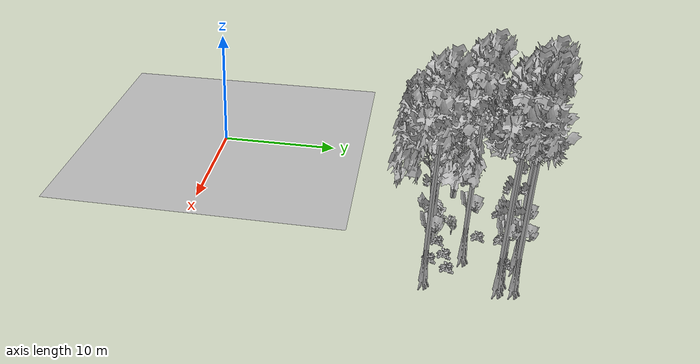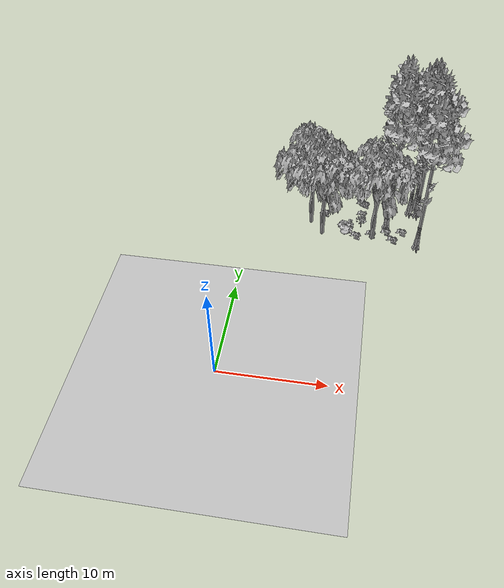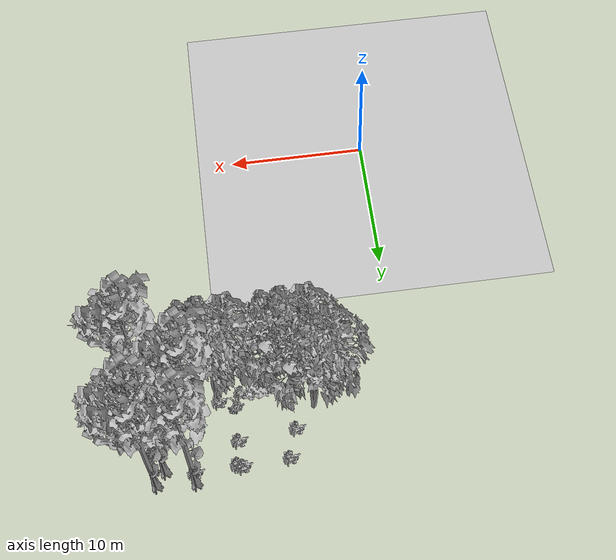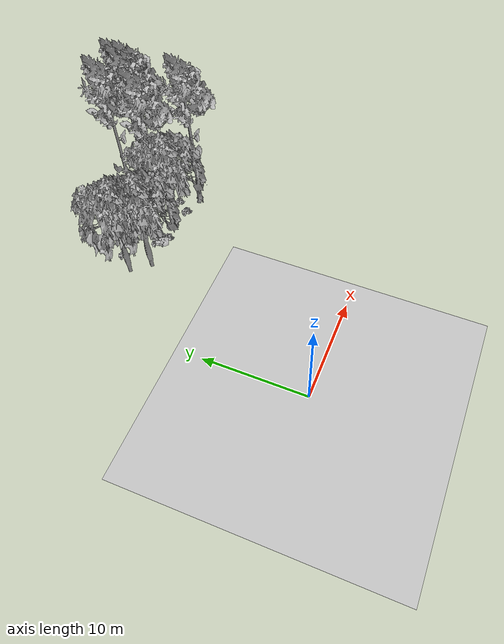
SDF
<sdf version="1.7">
 <world name="default">
  <model name="ground_plane">
   <static>1</static>
   <link name="link">
    <collision name="collision">
     <pose>-50 0 0 0 -0 0</pose>
     <geometry><plane><normal>0 0 1</normal><size>80 80</size></plane></geometry>
     <surface><contact><ode><min_depth>0.01</min_depth><max_vel>0</max_vel></ode></contact></surface>
    </collision>
    <visual name="grass">
     <cast_shadows>0</cast_shadows>
     <geometry>
      <mesh>
       <scale>0.46714285714285714 0.46714285714285714 0.1</scale>
       <uri>file://grass_plane/meshes/grass_plane.dae</uri>
      </mesh>
     </geometry>
    </visual>
   </link>
  </model>
  <model name="Tree 19">
   <static>1</static>
   <pose>7.492964837227454 18.982073438112792 0 1.57079 -0 0</pose>
   <link name="link">
    <collision name="collision">
     <geometry><mesh><scale>3.5 5 3.5</scale><uri>model://tree_2/meshes/tree_2.obj</uri></mesh></geometry>
    </collision>
    <visual name="visual">
     <geometry><mesh><scale>3.5 5 3.5</scale><uri>model://tree_2/meshes/tree_2.obj</uri></mesh></geometry>
    </visual>
   </link>
  </model>
  <model name="Tree 23">
   <static>1</static>
   <pose>17.515586112609597 23.757073896121092 0 1.57079 -0 0</pose>
   <link name="link">
    <collision name="collision">
     <geometry><mesh><scale>3.5 5 3.5</scale><uri>model://tree_9/meshes/tree_9.obj</uri></mesh></geometry>
    </collision>
    <visual name="visual">
     <geometry><mesh><scale>3.5 5 3.5</scale><uri>model://tree_9/meshes/tree_9.obj</uri></mesh></geometry>
    </visual>
   </link>
  </model>
  <model name="Tree 115">
   <static>1</static>
   <pose>17.374951375174597 24.863605729819085 0 1.57079 -0 0</pose>
   <link name="link">
    <collision name="collision">
     <geometry><mesh><scale>3.5 5 3.5</scale><uri>model://tree_9/meshes/tree_9.obj</uri></mesh></geometry>
    </collision>
    <visual name="visual">
     <geometry><mesh><scale>3.5 5 3.5</scale><uri>model://tree_9/meshes/tree_9.obj</uri></mesh></geometry>
    </visual>
   </link>
  </model>
  <model name="Tree 143">
   <static>1</static>
   <pose>14.732624056927826 25.053784820803486 0 1.57079 -0 0</pose>
   <link name="link">
    <collision name="collision">
     <geometry><mesh><scale>3.5 5 3.5</scale><uri>model://tree_9/meshes/tree_9.obj</uri></mesh></geometry>
    </collision>
    <visual name="visual">
     <geometry><mesh><scale>3.5 5 3.5</scale><uri>model://tree_9/meshes/tree_9.obj</uri></mesh></geometry>
    </visual>
   </link>
  </model>
  <model name="Tree 240">
   <static>1</static>
   <pose>12.75969912128506 18.999003732467934 0 1.57079 -0 0</pose>
   <link name="link">
    <collision name="collision">
     <geometry><mesh><scale>3.5 5 3.5</scale><uri>model://tree_2/meshes/tree_2.obj</uri></mesh></geometry>
    </collision>
    <visual name="visual">
     <geometry><mesh><scale>3.5 5 3.5</scale><uri>model://tree_2/meshes/tree_2.obj</uri></mesh></geometry>
    </visual>
   </link>
  </model>
  <model name="Tree 283">
   <static>1</static>
   <pose>6.16494381658574 20.604498051196884 0 1.57079 -0 0</pose>
   <link name="link">
    <collision name="collision">
     <geometry><mesh><scale>3.5 5 3.5</scale><uri>model://tree_2/meshes/tree_2.obj</uri></mesh></geometry>
    </collision>
    <visual name="visual">
     <geometry><mesh><scale>3.5 5 3.5</scale><uri>model://tree_2/meshes/tree_2.obj</uri></mesh></geometry>
    </visual>
   </link>
  </model>
  <model name="Tree 333">
   <static>1</static>
   <pose>16.737334120922554 23.9827214229226 0 1.57079 -0 0</pose>
   <link name="link">
    <collision name="collision">
     <geometry><mesh><scale>3.5 5 3.5</scale><uri>model://tree_9/meshes/tree_9.obj</uri></mesh></geometry>
    </collision>
    <visual name="visual">
     <geometry><mesh><scale>3.5 5 3.5</scale><uri>model://tree_9/meshes/tree_9.obj</uri></mesh></geometry>
    </visual>
   </link>
  </model>
  <model name="Tree 431">
   <static>1</static>
   <pose>14.320911684472385 21.362742919863173 0 1.57079 -0 0</pose>
   <link name="link">
    <collision name="collision">
     <geometry><mesh><scale>3.5 5 3.5</scale><uri>model://tree_9/meshes/tree_9.obj</uri></mesh></geometry>
    </collision>
    <visual name="visual">
     <geometry><mesh><scale>3.5 5 3.5</scale><uri>model://tree_9/meshes/tree_9.obj</uri></mesh></geometry>
    </visual>
   </link>
  </model>
  <model name="Tree 575">
   <static>1</static>
   <pose>17.51455254611851 18.66112296201237 0 1.57079 -0 0</pose>
   <link name="link">
    <collision name="collision">
     <geometry><mesh><scale>3.5 5 3.5</scale><uri>model://tree_9/meshes/tree_9.obj</uri></mesh></geometry>
    </collision>
    <visual name="visual">
     <geometry><mesh><scale>3.5 5 3.5</scale><uri>model://tree_9/meshes/tree_9.obj</uri></mesh></geometry>
    </visual>
   </link>
  </model>
  <model name="Bush 24">
   <static>1</static>
   <pose>11.851271591511356 24.143827489897532 0 1.57079 -0 0</pose>
   <link name="link">
    <collision name="collision">
     <geometry><mesh><scale>2 2 2</scale><uri>model://bush_2/meshes/bush_2.obj</uri></mesh></geometry>
     <surface><contact><collide_without_contact>false</collide_without_contact></contact></surface>
    </collision>
    <visual name="visual">
     <geometry><mesh><scale>2 2 2</scale><uri>model://bush_2/meshes/bush_2.obj</uri></mesh></geometry>
    </visual>
   </link>
  </model>
  <model name="Bush 37">
   <static>1</static>
   <pose>14.297269027422303 20.029597790514472 0 1.57079 -0 0</pose>
   <link name="link">
    <collision name="collision">
     <geometry><mesh><scale>2 2 2</scale><uri>model://bush_2/meshes/bush_2.obj</uri></mesh></geometry>
     <surface><contact><collide_without_contact>false</collide_without_contact></contact></surface>
    </collision>
    <visual name="visual">
     <geometry><mesh><scale>2 2 2</scale><uri>model://bush_2/meshes/bush_2.obj</uri></mesh></geometry>
    </visual>
   </link>
  </model>
  <model name="Bush 177">
   <static>1</static>
   <pose>15.931324143497825 20.23814214731337 0 1.57079 -0 0</pose>
   <link name="link">
    <collision name="collision">
     <geometry><mesh><scale>2 2 2</scale><uri>model://bush_2/meshes/bush_2.obj</uri></mesh></geometry>
     <surface><contact><collide_without_contact>false</collide_without_contact></contact></surface>
    </collision>
    <visual name="visual">
     <geometry><mesh><scale>2 2 2</scale><uri>model://bush_2/meshes/bush_2.obj</uri></mesh></geometry>
    </visual>
   </link>
  </model>
  <model name="Bush 251">
   <static>1</static>
   <pose>15.003914712777963 18.94227570253635 0 1.57079 -0 0</pose>
   <link name="link">
    <collision name="collision">
     <geometry><mesh><scale>2 2 2</scale><uri>model://bush_2/meshes/bush_2.obj</uri></mesh></geometry>
     <surface><contact><collide_without_contact>false</collide_without_contact></contact></surface>
    </collision>
    <visual name="visual">
     <geometry><mesh><scale>2 2 2</scale><uri>model://bush_2/meshes/bush_2.obj</uri></mesh></geometry>
    </visual>
   </link>
  </model>
  <model name="Bush 288">
   <static>1</static>
   <pose>11.144605378893353 19.039170337851544 0 1.57079 -0 0</pose>
   <link name="link">
    <collision name="collision">
     <geometry><mesh><scale>2 2 2</scale><uri>model://bush_2/meshes/bush_2.obj</uri></mesh></geometry>
     <surface><contact><collide_without_contact>false</collide_without_contact></contact></surface>
    </collision>
    <visual name="visual">
     <geometry><mesh><scale>2 2 2</scale><uri>model://bush_2/meshes/bush_2.obj</uri></mesh></geometry>
    </visual>
   </link>
  </model>
  <model name="Bush 294">
   <static>1</static>
   <pose>10.027151864977526 19.095418939354403 0 1.57079 -0 0</pose>
   <link name="link">
    <collision name="collision">
     <geometry><mesh><scale>2 2 2</scale><uri>model://bush_1/meshes/bush_1.obj</uri></mesh></geometry>
     <surface><contact><collide_without_contact>false</collide_without_contact></contact></surface>
    </collision>
    <visual name="visual">
     <geometry><mesh><scale>2 2 2</scale><uri>model://bush_1/meshes/bush_1.obj</uri></mesh></geometry>
    </visual>
   </link>
  </model>
  <model name="Bush 340">
   <static>1</static>
   <pose>11.503414839845213 24.327251105507074 0 1.57079 -0 0</pose>
   <link name="link">
    <collision name="collision">
     <geometry><mesh><scale>2 2 2</scale><uri>model://bush_2/meshes/bush_2.obj</uri></mesh></geometry>
     <surface><contact><collide_without_contact>false</collide_without_contact></contact></surface>
    </collision>
    <visual name="visual">
     <geometry><mesh><scale>2 2 2</scale><uri>model://bush_2/meshes/bush_2.obj</uri></mesh></geometry>
    </visual>
   </link>
  </model>
  <model name="Bush 438">
   <static>1</static>
   <pose>8.270830820244328 24.146826989053878 0 1.57079 -0 0</pose>
   <link name="link">
    <collision name="collision">
     <geometry><mesh><scale>2 2 2</scale><uri>model://bush_2/meshes/bush_2.obj</uri></mesh></geometry>
     <surface><contact><collide_without_contact>false</collide_without_contact></contact></surface>
    </collision>
    <visual name="visual">
     <geometry><mesh><scale>2 2 2</scale><uri>model://bush_2/meshes/bush_2.obj</uri></mesh></geometry>
    </visual>
   </link>
  </model>
  <model name="Bush 453">
   <static>1</static>
   <pose>11.617067983524642 20.52261112462525 0 1.57079 -0 0</pose>
   <link name="link">
    <collision name="collision">
     <geometry><mesh><scale>2 2 2</scale><uri>model://bush_5/meshes/bush_5.obj</uri></mesh></geometry>
     <surface><contact><collide_without_contact>false</collide_without_contact></contact></surface>
    </collision>
    <visual name="visual">
     <geometry><mesh><scale>2 2 2</scale><uri>model://bush_5/meshes/bush_5.obj</uri></mesh></geometry>
    </visual>
   </link>
  </model>
  <model name="Bush 533">
   <static>1</static>
   <pose>14.747038578269851 24.349412520767046 0 1.57079 -0 0</pose>
   <link name="link">
    <collision name="collision">
     <geometry><mesh><scale>2 2 2</scale><uri>model://bush_2/meshes/bush_2.obj</uri></mesh></geometry>
     <surface><contact><collide_without_contact>false</collide_without_contact></contact></surface>
    </collision>
    <visual name="visual">
     <geometry><mesh><scale>2 2 2</scale><uri>model://bush_2/meshes/bush_2.obj</uri></mesh></geometry>
    </visual>
   </link>
  </model>
  <model name="Bush 537">
   <static>1</static>
   <pose>7.628556677506808 22.130459022556927 0 1.57079 -0 0</pose>
   <link name="link">
    <collision name="collision">
     <geometry><mesh><scale>2 2 2</scale><uri>model://bush_2/meshes/bush_2.obj</uri></mesh></geometry>
     <surface><contact><collide_without_contact>false</collide_without_contact></contact></surface>
    </collision>
    <visual name="visual">
     <geometry><mesh><scale>2 2 2</scale><uri>model://bush_2/meshes/bush_2.obj</uri></mesh></geometry>
    </visual>
   </link>
  </model>
  <model name="Bush 547">
   <static>1</static>
   <pose>11.63066264490071 22.482893649254876 0 1.57079 -0 0</pose>
   <link name="link">
    <collision name="collision">
     <geometry><mesh><scale>2 2 2</scale><uri>model://bush_2/meshes/bush_2.obj</uri></mesh></geometry>
     <surface><contact><collide_without_contact>false</collide_without_contact></contact></surface>
    </collision>
    <visual name="visual">
     <geometry><mesh><scale>2 2 2</scale><uri>model://bush_2/meshes/bush_2.obj</uri></mesh></geometry>
    </visual>
   </link>
  </model>
  <model name="Bush 613">
   <static>1</static>
   <pose>12.716631654231868 19.488907076542567 0 1.57079 -0 0</pose>
   <link name="link">
    <collision name="collision">
     <geometry><mesh><scale>2 2 2</scale><uri>model://bush_2/meshes/bush_2.obj</uri></mesh></geometry>
     <surface><contact><collide_without_contact>false</collide_without_contact></contact></surface>
    </collision>
    <visual name="visual">
     <geometry><mesh><scale>2 2 2</scale><uri>model://bush_2/meshes/bush_2.obj</uri></mesh></geometry>
    </visual>
   </link>
  </model>
 </world>
</sdf>
